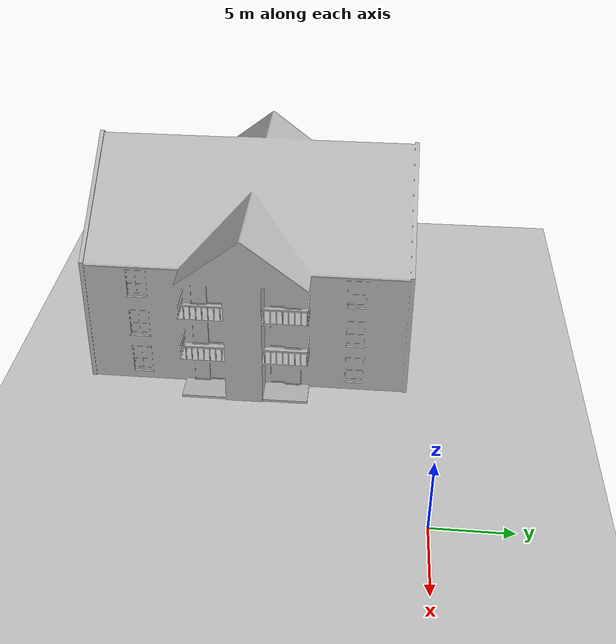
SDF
<sdf version="1.7">
 <world name="default">
  <plugin name="ros_interface_plugin" filename="librotors_gazebo_ros_interface_plugin.so"/>
  <light name="sun" type="directional">
   <pose>0 0 10 0 -0 0</pose>
   <diffuse>0.8 0.8 0.8 1</diffuse>
   <specular>0.1 0.1 0.1 1</specular>
   <attenuation>
    <range>1000</range>
    <constant>0.9</constant>
    <linear>0.01</linear>
    <quadratic>0.001</quadratic>
   </attenuation>
   <direction>-0.5 0.5 -1</direction>
   <spot><inner_angle>0</inner_angle><outer_angle>0</outer_angle><falloff>0</falloff></spot>
  </light>
  <model name="ground_plane">
   <static>1</static>
   <link name="link">
    <collision name="collision">
     <geometry><plane><normal>0 0 1</normal><size>100 100</size></plane></geometry>
     <surface><friction><ode><mu>100</mu><mu2>50</mu2></ode></friction></surface>
    </collision>
    <visual name="visual">
     <cast_shadows>0</cast_shadows>
     <geometry><plane><normal>0 0 1</normal><size>100 100</size></plane></geometry>
     <material>
      <script><uri>file://media/materials/scripts/gazebo.material</uri><name>Gazebo/Grey</name></script>
     </material>
    </visual>
   </link>
  </model>
  <physics type="ode">
   <ode>
    <solver>
     <type>quick</type>
     <iters>50</iters>
     <sor>1.3</sor>
     <use_dynamic_moi_rescaling>0</use_dynamic_moi_rescaling>
    </solver>
    <constraints>
     <cfm>0</cfm>
     <erp>0.2</erp>
     <contact_max_correcting_vel>100</contact_max_correcting_vel>
     <contact_surface_layer>0.001</contact_surface_layer>
    </constraints>
   </ode>
   <max_step_size>0.01</max_step_size>
   <real_time_factor>1</real_time_factor>
   <real_time_update_rate>100</real_time_update_rate>
   <gravity>0 0 -9.8</gravity>
  </physics>
  <atmosphere type="adiabatic"/>
  <scene><ambient>0.4 0.4 0.4 1</ambient><background>0.7 0.7 0.7 1</background><shadows>1</shadows></scene>
  <spherical_coordinates>
   <surface_model>EARTH_WGS84</surface_model>
   <latitude_deg>0</latitude_deg>
   <longitude_deg>0</longitude_deg>
   <elevation>0</elevation>
   <heading_deg>0</heading_deg>
  </spherical_coordinates>
  <gravity>0 0 -9.8</gravity>
  <magnetic_field>6e-06 2.3e-05 -4.2e-05</magnetic_field>
  <model name="apartment">
   <static>1</static>
   <link name="link">
    <collision name="collision">
     <geometry><mesh><uri>model://apartment/meshes/apartment.dae</uri></mesh></geometry>
    </collision>
    <visual name="visual">
     <geometry><mesh><uri>model://apartment/meshes/apartment.dae</uri></mesh></geometry>
    </visual>
   </link>
   <pose>-20.4776 -12.0412 0 0 -0 0</pose>
  </model>
 </world>
</sdf>
